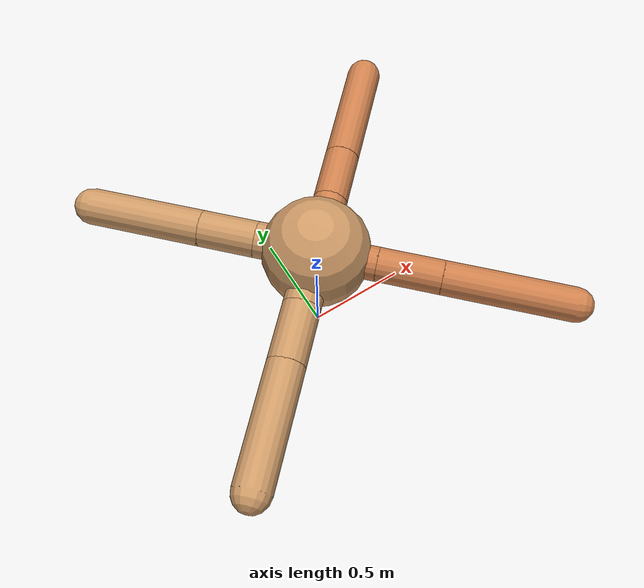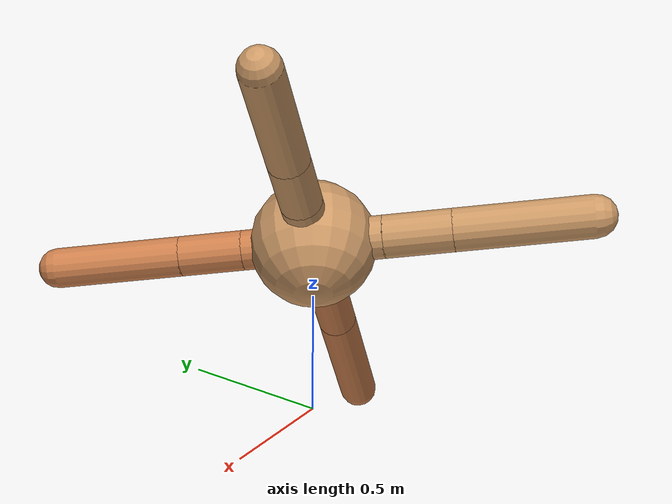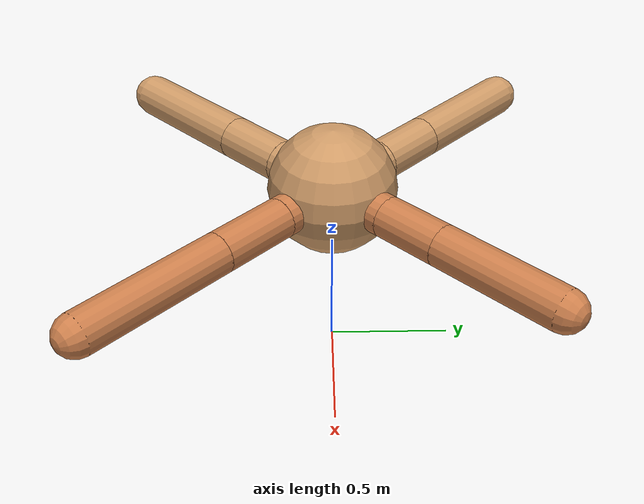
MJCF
<?xml version="1.0" ?>
<mujoco model="ant">

	<compiler angle="degree" coordinate="local" inertiafromgeom="true"/>

	<option integrator="RK4" timestep="0.01"/>

	<custom>

		<numeric data="0.0 0.0 0.55 1.0 0.0 0.0 0.0 0.0 1.0 0.0 -1.0 0.0 -1.0 0.0 1.0" name="init_qpos"/>

	</custom>

	<default>

		<joint armature="1" damping="1" limited="true"/>

		<geom conaffinity="0" condim="3" density="5.0" friction="1.5 0.1 0.1" margin="0.01" rgba="0.8 0.6 0.4 1"/>

	</default>

	<worldbody>

		<body name="torso" pos="0 0 0.75">

			<geom name="torso_geom" pos="0 0 0" size="0.2551222048229202" type="sphere"/>

			<!--joint armature="0" damping="0" limited="false" margin="0.01" name="root" pos="0 0 0" type="free"/-->

			<body name="front_left_leg" pos="0 0 0">

				<geom fromto="0 0 0 0.2 0.2 0" name="aux_1_geom" size="0.08137877886429934" type="capsule" rgba=".8 .5 .3 1"/>

				<body name="aux_1" pos="0.2 0.2 0">

					<joint axis="0 0 1" name="hip_1" pos="0.0 0.0 0.0" range="-40 40" type="hinge"/>

					<geom fromto="0 0 0 0.18111861930427559 0.18111861930427559 0" name="left_leg_geom" size="0.08137877886429934" type="capsule" rgba=".8 .5 .3 1"/>

					<body pos="0.18111861930427559 0.18111861930427559 0" name="front_left_foot">

						<joint axis="-1 1 0" name="ankle_1" pos="0.0 0.0 0.0" range="30 100" type="hinge"/>

						<geom fromto="0 0 0 0.36223723860855117 0.36223723860855117 0" name="left_ankle_geom" size="0.08137877886429934" type="capsule" rgba=".8 .5 .3 1"/>

					</body>

				</body>

			</body>

			<body name="front_right_leg" pos="0 0 0">

				<geom fromto="0 0 0 -0.2 0.2 0" name="aux_2_geom" size="0.08521268249774085" type="capsule"/>

				<body name="aux_2" pos="-0.2 0.2 0">

					<joint axis="0 0 1" name="hip_2" pos="0.0 0.0 0.0" range="-40 40" type="hinge"/>

					<geom fromto="0 0 0 -0.1874685248318606 0.1874685248318606 0" name="right_leg_geom" size="0.08521268249774085" type="capsule"/>

					<body pos="-0.1874685248318606 0.1874685248318606 0" name="front_right_foot">

						<joint axis="1 1 0" name="ankle_2" pos="0.0 0.0 0.0" range="-100 -30" type="hinge"/>

						<geom fromto="0 0 0 -0.3749370496637212 0.3749370496637212 0" name="right_ankle_geom" size="0.08521268249774085" type="capsule"/>

					</body>

				</body>

			</body>

			<body name="left_back_leg" pos="0 0 0">

				<geom fromto="0 0 0 -0.2 -0.2 0" name="aux_3_geom" size="0.08799945568286517" type="capsule"/>

				<body name="aux_3" pos="-0.2 -0.2 0">

					<joint axis="0 0 1" name="hip_3" pos="0.0 0.0 0.0" range="-40 40" type="hinge"/>

					<geom fromto="0 0 0 -0.19602045533597537 -0.19602045533597537 0" name="back_leg_geom" size="0.08799945568286517" type="capsule"/>

					<body pos="-0.19602045533597537 -0.19602045533597537 0" name="left_back_foot">

						<joint axis="-1 1 0" name="ankle_3" pos="0.0 0.0 0.0" range="-100 -30" type="hinge"/>

						<geom fromto="0 0 0 -0.39204091067195074 -0.39204091067195074 0" name="third_ankle_geom" size="0.08799945568286517" type="capsule"/>

					</body>

				</body>

			</body>

			<body name="right_back_leg" pos="0 0 0">

				<geom fromto="0 0 0 0.2 -0.2 0" name="aux_4_geom" size="0.0795827640412869" type="capsule" rgba=".8 .5 .3 1"/>

				<body name="aux_4" pos="0.2 -0.2 0">

					<joint axis="0 0 1" name="hip_4" pos="0.0 0.0 0.0" range="-40 40" type="hinge"/>

					<geom fromto="0 0 0 0.21138314871522956 -0.21138314871522956 0" name="rightback_leg_geom" size="0.0795827640412869" type="capsule" rgba=".8 .5 .3 1"/>

					<body pos="0.21138314871522956 -0.21138314871522956 0" name="right_back_foot">

						<joint axis="1 1 0" name="ankle_4" pos="0.0 0.0 0.0" range="30 100" type="hinge"/>

						<geom fromto="0 0 0 0.4227662974304591 -0.4227662974304591 0" name="fourth_ankle_geom" size="0.0795827640412869" type="capsule" rgba=".8 .5 .3 1"/>

					</body>

				</body>

			</body>

		</body>

	</worldbody>

	<actuator>

		<motor ctrllimited="true" ctrlrange="-1.0 1.0" joint="hip_4" gear="150"/>

		<motor ctrllimited="true" ctrlrange="-1.0 1.0" joint="ankle_4" gear="150"/>

		<motor ctrllimited="true" ctrlrange="-1.0 1.0" joint="hip_1" gear="150"/>

		<motor ctrllimited="true" ctrlrange="-1.0 1.0" joint="ankle_1" gear="150"/>

		<motor ctrllimited="true" ctrlrange="-1.0 1.0" joint="hip_2" gear="150"/>

		<motor ctrllimited="true" ctrlrange="-1.0 1.0" joint="ankle_2" gear="150"/>

		<motor ctrllimited="true" ctrlrange="-1.0 1.0" joint="hip_3" gear="150"/>

		<motor ctrllimited="true" ctrlrange="-1.0 1.0" joint="ankle_3" gear="150"/>

	</actuator>

</mujoco>
